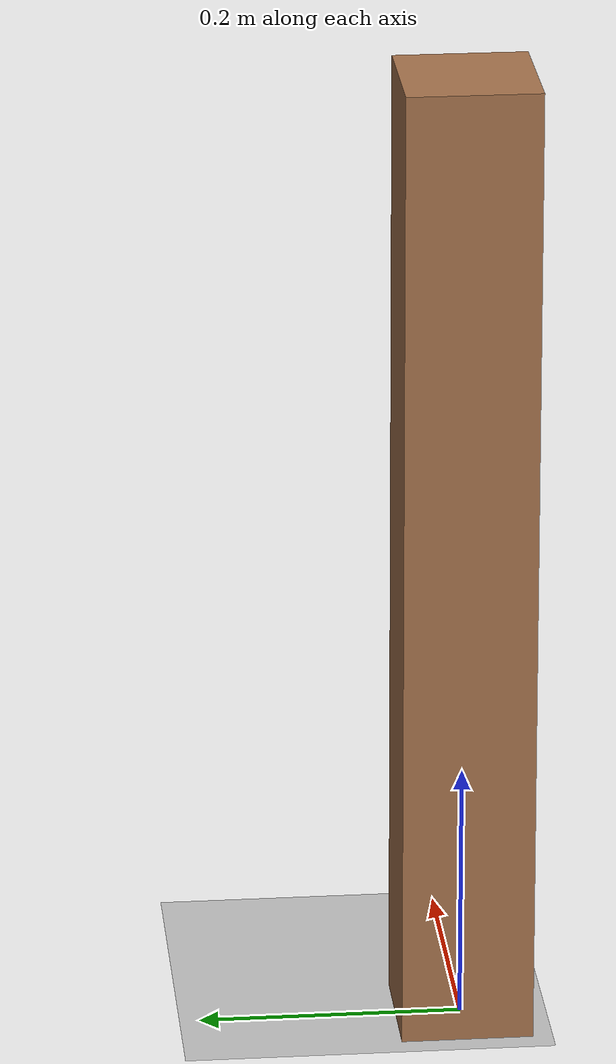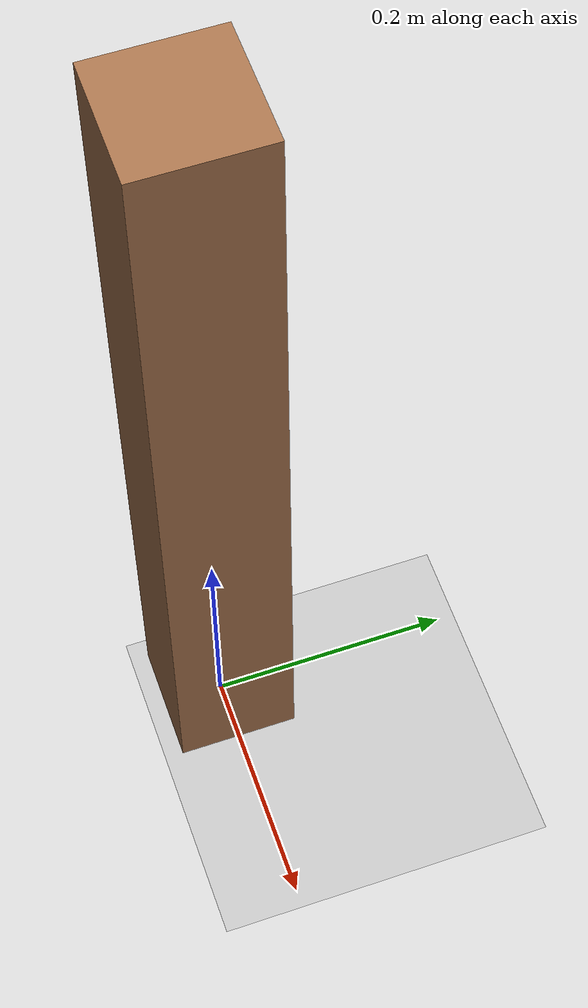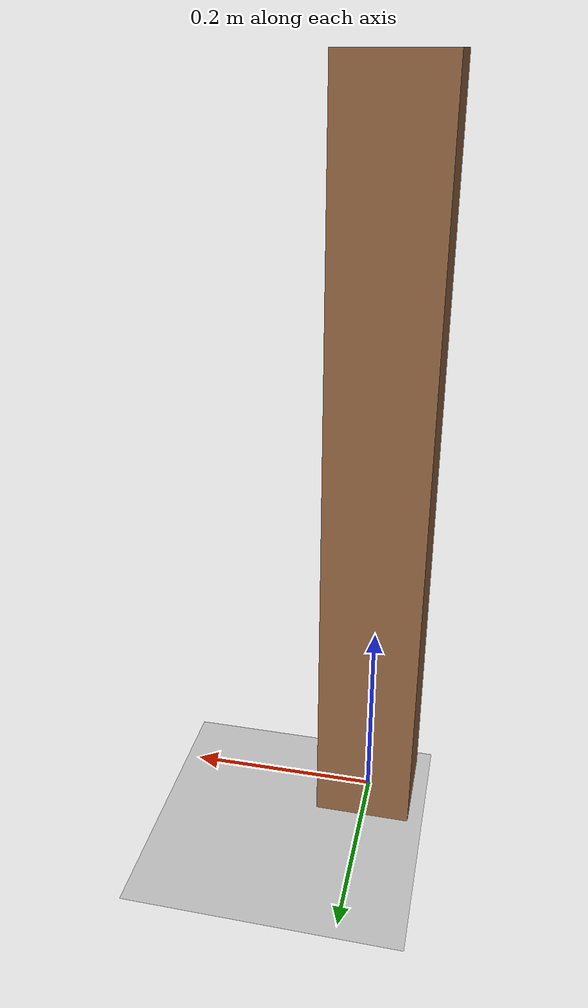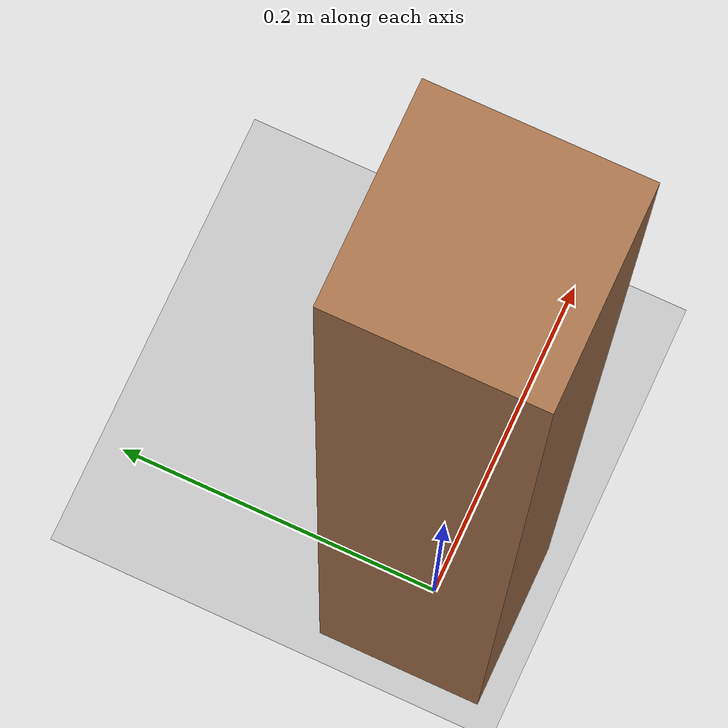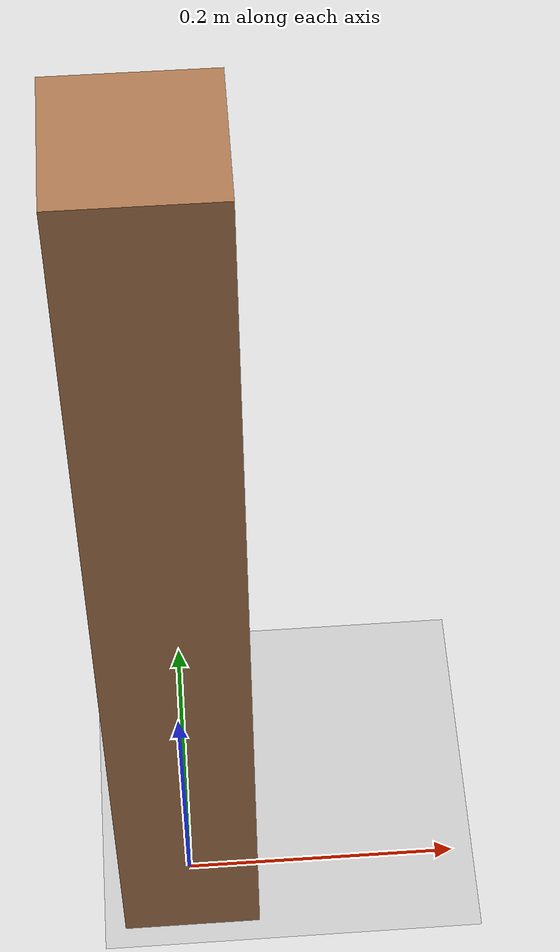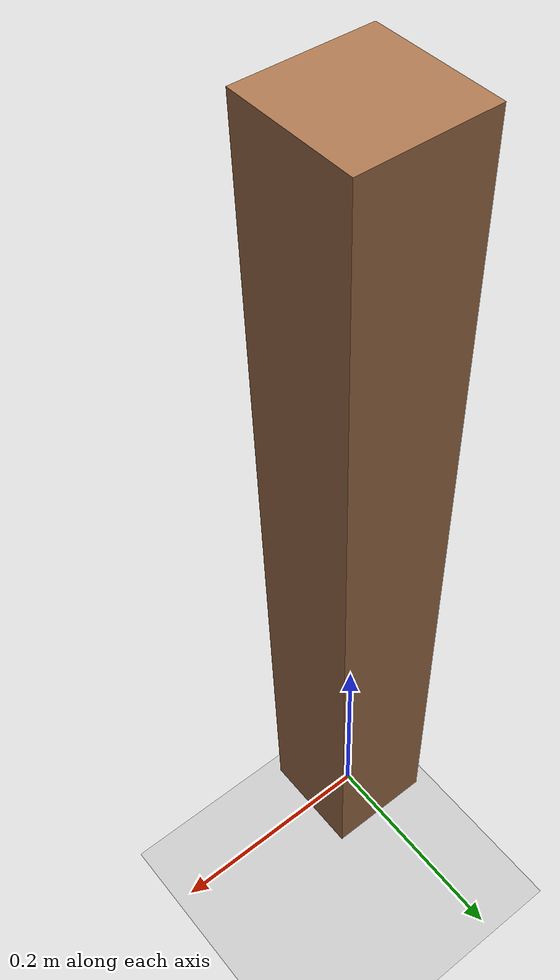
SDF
<?xml version="1.0" ?>
<sdf version="1.8">
  <world name="table_world">

    <!-- Light -->
    <light name="sun" type="directional">
      <pose>0 0 10 0 0 0</pose>
      <direction>-0.5 0.1 -1</direction>
    </light>
    <gravity>0 0 -9.8000000000000007</gravity>
    <magnetic_field>5.5644999999999998e-06 2.2875799999999999e-05 -4.2388400000000002e-05</magnetic_field>
    <atmosphere type='adiabatic'/>
    <scene>
      <ambient>0.5 0.5 0.5 1</ambient>
      <background>0.8 0.8 0.8 1</background>
      <shadows>true</shadows>
    </scene>

    <physics type='ode'>
      <max_step_size>0.001</max_step_size>
      <real_time_factor>1</real_time_factor>
      <real_time_update_rate>1000</real_time_update_rate>
    </physics>

    <!-- Floor -->
    <model name="ground_plane">
      <static>true</static>
      <link name="link">
        <collision name="collision">
          <geometry>
            <plane>
              <normal>0 0 1</normal>
              <size>50 50</size>
            </plane>
          </geometry>
        </collision>
        <visual name="visual">
          <geometry>
            <plane>
              <normal>0 0 1</normal>
              <size>50 50</size>
            </plane>
          </geometry>
          <material>
            <ambient>0.75 0.75 0.75 1</ambient>
            <diffuse>0.75 0.75 0.75 1</diffuse>
            <specular>0.05 0.05 0.05 1</specular>
          </material>
        </visual>
      </link>
    </model>

    <!-- Table (simple, solid) -->
    <model name="table">
      <static>true</static>
      <pose>0 0 0.375 0 0 0</pose>

      <link name="link">
        <collision name="collision">
          <geometry>
            <box>
              <size>0.1 0.1 0.75</size>
            </box>
          </geometry>
        </collision>

        <visual name="visual">
          <geometry>
            <box>
              <size>0.1 0.1 0.75</size>
            </box>
          </geometry>
          <material>
            <ambient>0.55 0.40 0.25 1</ambient>
            <diffuse>0.65 0.45 0.30 1</diffuse>
            <specular>0.1 0.1 0.1 1</specular>
          </material>
        </visual>
      </link>
    </model>

  </world>
</sdf>
